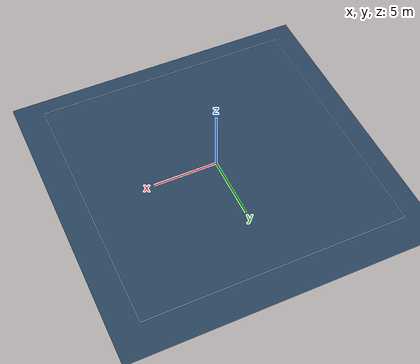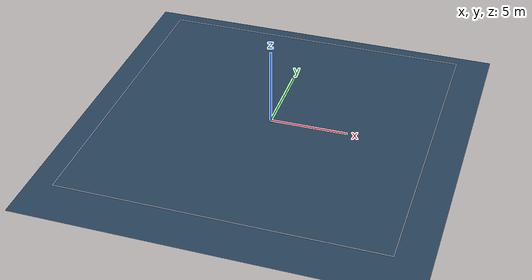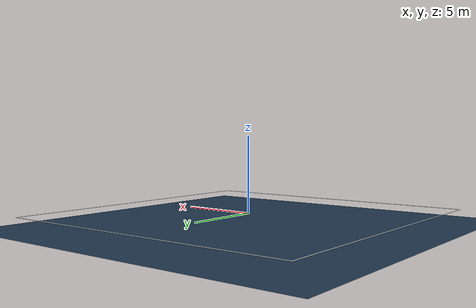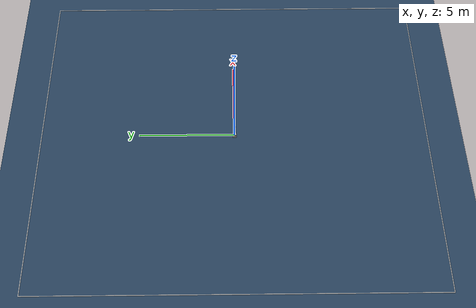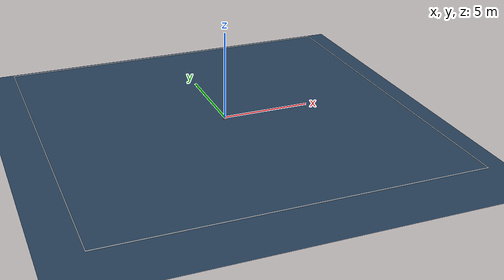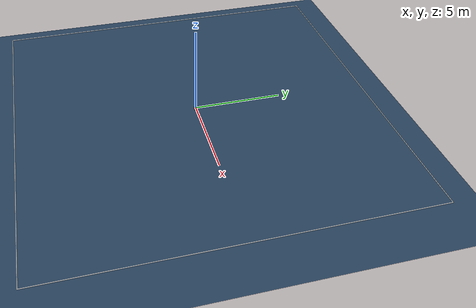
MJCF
<mujoco model="inverted two-axis pendulum">
  <compiler inertiafromgeom="true"/>
  <default>
    <joint damping="0" limited="true"/>
    <motor ctrlrange="-1 1"/>
  </default>
  <option gravity="0 0 -9.81" />
  <custom>
    <numeric data="10000" name="constraint_stiffness"/>
    <numeric data="10000" name="constraint_limit_stiffness"/>
    <numeric data="0" name="spring_mass_scale"/>
    <numeric data="1" name="spring_inertia_scale"/>
    <numeric data="5" name="solver_maxls"/>
  </custom>
  <size nstack="3000"/>

  <asset>
    <texture type="skybox" builtin="gradient" rgb1="0.8 0.8 0.8" rgb2="0 0 0" width="512" height="3072"/>
    <texture name="floor_tex" type="2d" builtin="checker" rgb1=".2 .3 .4" rgb2=".1 .2 .3" width="100" height="100" />
    <material name="floor_material" texture="floor_tex" texuniform="true" />
  </asset>

  <worldbody>
    <light cutoff="100" diffuse="1 1 1" dir="-0 0 -1.2" directional="true" exponent="1" pos="0 0 1.3" specular=".1 .1 .1"/>
    <geom conaffinity="1" condim="3" material="floor_material" name="floor" pos="0 0 -0.75" size="40 40 40" type="plane" rgba="0.5 0.5 0.5 1.0"/>
    <light diffuse=".5 .5 .5" pos="0 0 3" dir="0 0 -1"/>

    <geom pos="0 10.2 0" quat="0.707 0 0.707 0" size="0.02 10.2" type="capsule" rgba="1 1 1 1"/>
    <geom pos="0 -10.2 0" quat="0.707 0 0.707 0" size="0.02 10.2" type="capsule" rgba="1 1 1 1"/>
    <geom pos="10.2 0 0" quat="0.707 0.707 0 0" size="0.02 10.2" type="capsule" rgba="1 1 1 1"/>
    <geom pos="-10.2 0 0" quat="0.707 0.707 0 0" size="0.02 10.2" type="capsule" rgba="1 1 1 1"/>

    <body name="cart" pos="0 0 0">
      <joint axis="1 0 0" limited="true" name="x_slider" pos="0 0 0" range="-5 5"
             type="slide" damping="0.4" armature="0.02" margin="0.2"
             solreflimit="0.08 1" solimplimit="0.7 0.95 0.02 0.5 2"/>
      <joint axis="0 1 0" limited="true" name="y_slider" pos="0 0 0" range="-5 5"
             type="slide" damping="0.4" armature="0.02" margin="0.2"
             solreflimit="0.08 1" solimplimit="0.7 0.95 0.02 0.5 2"/>
      <geom name="cart" pos="0 0 0" quat="0.707 0 0.707 0" size="0.1 0.1 0.1" type="box" mass="1"/>

      <body name="pole" pos="0 0 0">
        <!-- Armature regularizes the universal-joint coordinate singularity
             when hinge_y approaches +/- 90 degrees. -->
        <joint axis="0 1 0" limited="false" name="hinge_x" pos="0 0 0"
               type="hinge" damping="0.01" armature="0.005"/>
        <joint axis="1 0 0" limited="false" name="hinge_y" pos="0 0 0"
               type="hinge" damping="0.01" armature="0.005"/>
        <geom fromto="0 0 0 0 0 0.6" name="pole"  size="0.02" type="capsule" mass="1e-4"/>

        <geom name="mass" type="sphere" size="0.05" pos="0 0 0.6" mass="0.25"/>
        <site name="mass_site" pos="0 0 0.6" size="0.02" rgba="1 0 0 1"/>
      </body>
    </body>
  </worldbody>

  <actuator>
  <motor ctrllimited="true" ctrlrange="-1 1" gear="10" joint="x_slider" name="x_slide"/>
  <motor ctrllimited="true" ctrlrange="-1 1" gear="10" joint="y_slider" name="y_slide"/>
  </actuator>

<sensor>
  <jointpos name="x_pos" joint="x_slider"/>
  <jointpos name="y_pos" joint="y_slider"/>
  <jointpos name="hinge_x_pos" joint="hinge_x"/>
  <jointpos name="hinge_y_pos" joint="hinge_y"/>

  <jointvel name="x_vel" joint="x_slider"/>
  <jointvel name="y_vel" joint="y_slider"/>
  <jointvel name="hinge_x_vel" joint="hinge_x"/>
  <jointvel name="hinge_y_vel" joint="hinge_y"/>

  <actuatorfrc name="x_force" actuator="x_slide"/>
  <actuatorfrc name="y_force" actuator="y_slide"/>

  <framepos name="mass_pos" objtype="site" objname="mass_site"/>
  <framelinvel name="mas_vel" objtype="site" objname="mass_site"/>

</sensor>

</mujoco>
